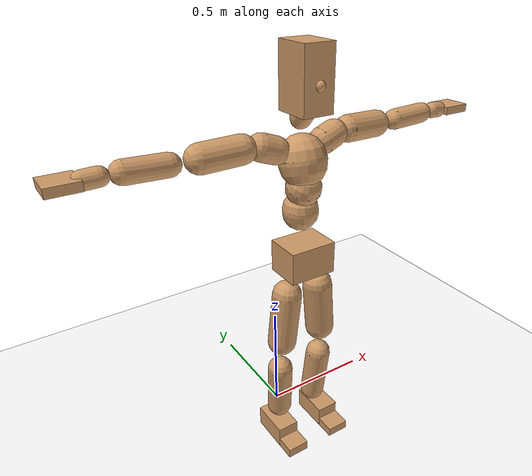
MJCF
<mujoco model="humanoid">
  <option integrator="implicitfast" />

  <visual>
    <global offwidth="1280" offheight="960" />
    <headlight active="1" ambient="0.34 0.34 0.34" diffuse="0.5 0.5 0.5" />
  </visual>

  <default>
    <joint damping="2" stiffness="2" armature="0.01" limited="true" solimplimit="0 .99 .01" />
    <geom condim="1" friction="0.7 0.005 0.0001" solimp=".99 .99 .003" solref="0.015 1" margin="0.001" rgba="0.8 0.6 .4 1" />
    <default class="smplcontact">
      <geom condim="3" friction="1. 0.005 0.0001" solref="0.015 1" solimp="0.98 0.98 0.001" priority="1" />
    </default>
    <default class="stiff_medium">
      <joint stiffness="10" />
    </default>
    <default class="stiff_medium_higher">
      <joint stiffness="50" />
    </default>
    <default class="stiff_high">
      <joint stiffness="100" />
    </default>
  </default>

  <asset>
    <texture type="skybox" builtin="gradient" rgb1="0.99 0.99 0.99" rgb2="0.608 0.828 0.892" width="100" />
    <texture builtin="flat" height="1278" mark="cross" markrgb="1 1 1" name="texgeom" random="0.01" rgb1="0.8 0.6 0.4" rgb2="0.8 0.6 0.4" type="cube" width="127" />
    <texture name="texplane" type="2d" builtin="checker" markrgb="1 1 1" rgb1="0.756 0.772 0.76" rgb2="0.6 0.6 0.6" width="100" height="100" />
    <material name="MatPlane" reflectance="0.5" texture="texplane" texrepeat="1 1" texuniform="true" />
    <material name="geom" texture="texgeom" texuniform="true" />
  </asset>

  <worldbody>
    <light name="tracking_light" pos="0 0 7" dir="0 0 -1" directional="true" cutoff="100" exponent="1" diffuse="1 1 1" specular="0.1 0.1 0.1" mode="trackcom" />
    <camera name="back" pos="0 3 2.4" xyaxes="-1 0 0 0 -1 2" mode="trackcom" />
    <camera name="side" pos="-3 0 2.4" xyaxes="0 -1 0 1 0 2" mode="trackcom" />
    <camera name="front_side" pos="-2.8 -2.8 0.8" xyaxes="0.5 -0.5 0 0.1 0.1 1" mode="trackcom" />
    <geom condim="3" name="floor" pos="0 0 0" rgba="1 1 1 1" size="100 100 .2" type="plane" material="MatPlane" />
    <body name="Pelvis" pos="-0.0018 -0.2233 0.9367" euler="90 0 0">
      <site name="Pelvis" size="0.01" />
      <freejoint name="Pelvis" />
      <geom type="box" pos="-0.0000 -0.0121 -0.0055" size="0.097279 0.065702 0.07553" quat="1.0000 0.0000 0.0000 0.0000" density="3165.830099" name="Pelvis" />
      <body name="L_Hip" pos="0.0695 -0.0914 -0.0068">
        <joint name="L_Hip_x" type="hinge" pos="0 0 0" axis="1 0 0" stiffness="10.0" range="-160.0 22.92" class="stiff_medium" damping="14.999999999999998" armature="0.009999999999999998"/>
        <joint name="L_Hip_y" type="hinge" pos="0 0 0" axis="0 1 0" stiffness="10.0" range="-70.0 70.0" class="stiff_medium" damping="10.000000000000004" armature="0.010000000000000009"/>
        <joint name="L_Hip_z" type="hinge" pos="0 0 0" axis="0 0 1" stiffness="10.0" range="-28.65 90.0" class="stiff_medium" damping="9.999999999999998" armature="0.009999999999999998"/>
        <geom type="capsule" density="2040.816327" fromto="0.0069 -0.075 -0.0009 0.0274 -0.3002 -0.0036" size="0.0615" name="L_Hip" />
        <body name="L_Knee" pos="0.0343 -0.3752 -0.0045">
          <joint name="L_Knee_x" type="hinge" pos="0 0 0" axis="1 0 0" range="-5.16 171.89" damping="7.999999999999999" armature="0.009999999999999998" stiffness="2.0"/>
          <joint name="L_Knee_y" type="hinge" pos="0 0 0" axis="0 1 0" range="-4.58 6.88" damping="8.0" armature="0.010000000000000002" stiffness="2.0"/>
          <joint name="L_Knee_z" type="hinge" pos="0 0 0" axis="0 0 1" range="-6.88 4.58" damping="7.999999999999999" armature="0.009999999999999998" stiffness="2.0"/>
          <geom type="capsule" density="1234.567901" fromto="-0.0027 -0.0796 -0.0087 -0.0109 -0.3184 -0.035" size="0.0541" name="L_Knee" />
          <body name="L_Ankle" pos="-0.0136 -0.398 -0.0437">
            <joint name="L_Ankle_x" type="hinge" pos="0 0 0" axis="1 0 0" range="-45.84 45.84" class="stiff_medium" damping="6.000000000000078" armature="0.010000000000000262" stiffness="10.0"/>
            <joint name="L_Ankle_y" type="hinge" pos="0 0 0" axis="0 1 0" range="-74.48 22.92" class="stiff_medium" damping="3.0" armature="0.010000000000000002" stiffness="10.0"/>
            <joint name="L_Ankle_z" type="hinge" pos="0 0 0" axis="0 0 1" range="-4.58 4.58" class="stiff_medium" damping="6.000000000000083" armature="0.010000000000000276" stiffness="10.0"/>
            <geom type="box" pos="0.0233 -0.0239 0.0242" size="0.0483 0.0464 0.085" quat="1.0000 0.0000 0.0000 0.0000" density="449.071558" name="L_Ankle" class="smplcontact" />
            <body name="L_Toe" pos="0.0264 -0.0558 0.1193">
              <joint name="L_Toe_x" type="hinge" pos="0 0 0" axis="1 0 0" range="-91.67 22.92" armature="0.009999999999999227" damping="1.9999999999999225" stiffness="2.0"/>
              <joint name="L_Toe_y" type="hinge" pos="0 0 0" axis="0 1 0" range="-4.58 4.58" armature="0.009999999999999976" damping="1.9999999999999976" stiffness="2.0"/>
              <joint name="L_Toe_z" type="hinge" pos="0 0 0" axis="0 0 1" range="-4.58 4.58" armature="0.009999999999998817" damping="1.9999999999998817" stiffness="2.0"/>
              <geom type="box" pos="-0.003 0.0055 0.0248" size="0.0478 0.02 0.0496" quat="1.0000 0.0000 0.0000 0.0000" density="423.206892" name="L_Toe" class="smplcontact" />
            </body>
          </body>
        </body>
      </body>
      <body name="R_Hip" pos="-0.0677 -0.0905 -0.0043">
        <joint name="R_Hip_x" type="hinge" pos="0 0 0" axis="1 0 0" stiffness="10.0" range="-160.0 22.92" class="stiff_medium" damping="14.999999999999998" armature="0.009999999999999998"/>
        <joint name="R_Hip_y" type="hinge" pos="0 0 0" axis="0 1 0" stiffness="10.0" range="-70.0 70.0" class="stiff_medium" damping="10.000000000000004" armature="0.010000000000000009"/>
        <joint name="R_Hip_z" type="hinge" pos="0 0 0" axis="0 0 1" stiffness="10.0" range="-90.0 28.65" class="stiff_medium" damping="9.999999999999998" armature="0.009999999999999998"/>
        <geom type="capsule" density="2040.816327" fromto="-0.0077 -0.0765 -0.0018 -0.0306 -0.3061 -0.0071" size="0.0606" name="R_Hip" />
        <body name="R_Knee" pos="-0.0383 -0.3826 -0.0089">
          <joint name="R_Knee_x" type="hinge" pos="0 0 0" axis="1 0 0" range="-5.16 171.89" damping="7.999999999999999" armature="0.009999999999999998" stiffness="2.0"/>
          <joint name="R_Knee_y" type="hinge" pos="0 0 0" axis="0 1 0" range="-6.88 4.58" damping="8.0" armature="0.010000000000000002" stiffness="2.0"/>
          <joint name="R_Knee_z" type="hinge" pos="0 0 0" axis="0 0 1" range="-4.58 6.88" damping="7.999999999999999" armature="0.009999999999999998" stiffness="2.0"/>
          <geom type="capsule" density="1234.567901" fromto="0.0032 -0.0797 -0.0085 0.0126 -0.3187 -0.0338" size="0.0541" name="R_Knee" />
          <body name="R_Ankle" pos="0.0158 -0.3984 -0.0423">
            <joint name="R_Ankle_x" type="hinge" pos="0 0 0" axis="1 0 0" range="-45.84 45.84" class="stiff_medium" damping="6.000000000000078" armature="0.010000000000000262" stiffness="10.0"/>
            <joint name="R_Ankle_y" type="hinge" pos="0 0 0" axis="0 1 0" range="-22.92 74.48" class="stiff_medium" damping="3.0" armature="0.010000000000000002" stiffness="10.0"/>
            <joint name="R_Ankle_z" type="hinge" pos="0 0 0" axis="0 0 1" range="-4.58 4.58" class="stiff_medium" damping="6.000000000000083" armature="0.010000000000000276" stiffness="10.0"/>
            <geom type="box" pos="-0.0212 -0.0174 0.0256" size="0.0483 0.0478 0.0865" quat="1.0000 0.0000 0.0000 0.0000" density="434.700981" name="R_Ankle" class="smplcontact" />
            <body name="R_Toe" pos="-0.0254 -0.0481 0.1233">
              <joint name="R_Toe_x" type="hinge" pos="0 0 0" axis="1 0 0" range="-91.67 22.92" armature="0.009999999999999227" damping="1.9999999999999225" stiffness="2.0"/>
              <joint name="R_Toe_y" type="hinge" pos="0 0 0" axis="0 1 0" range="-4.58 4.58" armature="0.009999999999999976" damping="1.9999999999999976" stiffness="2.0"/>
              <joint name="R_Toe_z" type="hinge" pos="0 0 0" axis="0 0 1" range="-4.58 4.58" armature="0.009999999999998817" damping="1.9999999999998817" stiffness="2.0"/>
              <geom type="box" pos="0.0042 0.0045 0.0227" size="0.0479 0.0216 0.0493" quat="1.0000 0.0000 0.0000 0.0000" density="407.384095" name="R_Toe" class="smplcontact" />
            </body>
          </body>
        </body>
      </body>
      <body name="Torso" pos="-0.0025 0.109 -0.0267">
        <joint name="Torso_x" type="hinge" pos="0 0 0" axis="1 0 0" range="-25.78 57.3" class="stiff_medium" damping="13.755115043695481" armature="0.009288770986477736" stiffness="9.052899111111113"/>
        <joint name="Torso_y" type="hinge" pos="0 0 0" axis="0 1 0" range="-57.3 57.3" class="stiff_high" damping="18.84625245289182" armature="0.009867900344298207" stiffness="89.98399333333336"/>
        <joint name="Torso_z" type="hinge" pos="0 0 0" axis="0 0 1" range="-34.38 34.38" class="stiff_high" damping="18.340630066840674" armature="0.009518363634420931" stiffness="88.34993181818182"/>
        <geom type="capsule" density="2040.816327" fromto="0.0025 0.0608 0.0005 0.003 0.0743 0.0006" size="0.069979" name="Torso" />
        <body name="Spine" pos="0.0055 0.1352 0.0011">
          <joint name="Spine_x" type="hinge" pos="0 0 0" axis="1 0 0" stiffness="9.215996444444444" range="-25.78 57.3" class="stiff_medium" damping="14.042368845288518" armature="0.009509461750714873"/>
          <joint name="Spine_y" type="hinge" pos="0 0 0" axis="0 1 0" stiffness="9.201302444444444" range="-57.3 57.3" class="stiff_high" damping="7.632077169407893" armature="0.009891364950690774"/>
          <joint name="Spine_z" type="hinge" pos="0 0 0" axis="0 0 1" stiffness="18.56600444444444" range="-34.38 34.38" class="stiff_high" damping="11.427369983522102" armature="0.009768809284004231"/>
          <geom type="capsule" density="2040.816327" fromto="0.0007 0.0238 0.0114 0.0008 0.0291 0.014" size="0.068705" name="Spine" />
          <body name="Chest" pos="0.0015 0.0529 0.0254">
            <joint name="Chest_x" type="hinge" pos="0 0 0" axis="1 0 0" stiffness="9.426370888888888" range="-25.78 57.3" class="stiff_medium" damping="14.277047265086503" armature="0.00961058342540234"/>
            <joint name="Chest_y" type="hinge" pos="0 0 0" axis="0 1 0" stiffness="9.697409555555558" range="-57.3 57.3" class="stiff_high" damping="7.8417588035285455" armature="0.009908119789044682"/>
            <joint name="Chest_z" type="hinge" pos="0 0 0" axis="0 0 1" stiffness="18.758218666666664" range="-34.38 34.38" class="stiff_high" damping="11.536535064630984" armature="0.009854320662681338"/>
            <geom type="capsule" density="2040.816327" fromto="-0.0009 0.0682 -0.0173 -0.001 0.0833 -0.0212" size="0.091182" name="Chest" />
            <body name="Neck" pos="-0.0028 0.2139 -0.0429">
              <joint name="Neck_x" type="hinge" pos="0 0 0" axis="1 0 0" range="-28.65 57.3" class="stiff_medium_higher" damping="9.898506386042525" armature="0.009961362504809375" stiffness="49.180234444444444"/>
              <joint name="Neck_y" type="hinge" pos="0 0 0" axis="0 1 0" range="-40.11 40.11" class="stiff_medium_higher" damping="9.860787576259643" armature="0.00985138945156737" stiffness="49.35097333333333"/>
              <joint name="Neck_z" type="hinge" pos="0 0 0" axis="0 0 1" range="-40.11 40.11" class="stiff_medium_higher" damping="9.952126776728033" armature="0.009968457640890575" stiffness="49.67911333333333"/>
              <geom type="capsule" density="1000" fromto="0.001 0.013 0.0103 0.0041 0.052 0.0411" size="0.039676" name="Neck" />
              <body name="Head" pos="0.0052 0.065 0.0513">
                <joint name="Head_x" type="hinge" pos="0 0 0" axis="1 0 0" range="-28.65 57.3" class="stiff_medium_higher" damping="2.0000000000000027" armature="0.010000000000000026" stiffness="50.0"/>
                <joint name="Head_y" type="hinge" pos="0 0 0" axis="0 1 0" range="-40.11 40.11" class="stiff_medium_higher" damping="1.9999999999999998" armature="0.009999999999999998" stiffness="50.0"/>
                <joint name="Head_z" type="hinge" pos="0 0 0" axis="0 0 1" range="-40.11 40.11" class="stiff_medium_higher" damping="2.000000000000003" armature="0.010000000000000031" stiffness="50.0"/>
                <geom type="box" pos="-0.0042 0.0876 -0.0116" size="0.0606 0.1154 0.076" quat="1.0000 0.0000 0.0000 0.0000" density="1018.069894" name="Head" />
                <geom type="capsule" name="nose" size="0.02 0.01" pos="0 0.07 0.05" quat="1 0 0 0" mass="0" contype="0" conaffinity="0" />
              </body>
            </body>
            <body name="L_Thorax" pos="0.0788 0.1217 -0.0341">
              <joint name="L_Thorax_x" type="hinge" pos="0 0 0" axis="1 0 0" range="-10.89 4.58" class="stiff_medium_higher" damping="20.000000000000036" armature="0.010000000000000035" stiffness="50.0"/>
              <joint name="L_Thorax_y" type="hinge" pos="0 0 0" axis="0 1 0" range="-28.65 17.19" class="stiff_medium_higher" damping="20.0" armature="0.010000000000000002" stiffness="50.0"/>
              <joint name="L_Thorax_z" type="hinge" pos="0 0 0" axis="0 0 1" range="-31.51 40.11" class="stiff_medium_higher" damping="20.0" armature="0.01" stiffness="50.0"/>
              <geom type="capsule" density="1000" fromto="0.0182 0.0061 -0.0018 0.0728 0.0244 -0.0071" size="0.0521" name="L_Thorax" />
              <body name="L_Shoulder" pos="0.091 0.0305 -0.0089">
                <joint name="L_Shoulder_x" type="hinge" pos="0 0 0" axis="1 0 0" range="-97.4 97.4" class="stiff_medium" damping="6.0000000000000036" armature="0.010000000000000014" stiffness="10.0"/>
                <joint name="L_Shoulder_y" type="hinge" pos="0 0 0" axis="0 1 0" range="-108.86 80.21" class="stiff_medium" damping="6.0" armature="0.01" stiffness="10.0"/>
                <joint name="L_Shoulder_z" type="hinge" pos="0 0 0" axis="0 0 1" range="-97.4 85.94" class="stiff_medium" damping="6.0" armature="0.010000000000000002" stiffness="10.0"/>
                <geom type="capsule" density="1000" fromto="0.0519 -0.0026 -0.0055 0.2077 -0.0102 -0.022" size="0.0517" name="L_Shoulder" />
                <body name="L_Elbow" pos="0.2596 -0.0128 -0.0275">
                  <joint name="L_Elbow_x" type="hinge" pos="0 0 0" axis="1 0 0" range="-17.19 4.58" damping="4.999999999999999" armature="0.009999999999999998" stiffness="2.0"/>
                  <joint name="L_Elbow_y" type="hinge" pos="0 0 0" axis="0 1 0" range="-180.0 17.19" damping="5.000000000000007" armature="0.010000000000000026" stiffness="2.0"/>
                  <joint name="L_Elbow_z" type="hinge" pos="0 0 0" axis="0 0 1" range="-100.84 4.58" damping="5.000000000000002" armature="0.010000000000000009" stiffness="2.0"/>
                  <geom type="capsule" density="1000" fromto="0.0498 0.0018 -0.0002 0.1994 0.0072 -0.0009" size="0.0405" name="L_Elbow" />
                  <body name="L_Wrist" pos="0.2492 0.009 -0.0012">
                    <joint name="L_Wrist_x" type="hinge" pos="0 0 0" axis="1 0 0" range="-180.0 22.92" armature="0.009999999999999872" damping="1.9999999999999871" stiffness="2.0"/>
                    <joint name="L_Wrist_y" type="hinge" pos="0 0 0" axis="0 1 0" range="-17.19 17.19" armature="0.010000000000000023" damping="2.000000000000002" stiffness="2.0"/>
                    <joint name="L_Wrist_z" type="hinge" pos="0 0 0" axis="0 0 1" range="-22.92 22.92" armature="0.009999999999999943" damping="1.9999999999999942" stiffness="2.0"/>
                    <geom type="capsule" density="1000" fromto="0.0168 -0.0016 -0.003 0.0672 -0.0065 -0.012" size="0.0318" name="L_Wrist" class="smplcontact" />
                    <body name="L_Hand" pos="0.084 -0.0082 -0.0149">
                      <joint name="L_Hand_x" type="hinge" pos="0 0 0" axis="1 0 0" range="-17.19 17.19" armature="0.009999999999999953" damping="1.9999999999999953" stiffness="2.0"/>
                      <joint name="L_Hand_y" type="hinge" pos="0 0 0" axis="0 1 0" range="-51.57 51.57" armature="0.010000000000000146" damping="2.0000000000000147" stiffness="2.0"/>
                      <joint name="L_Hand_z" type="hinge" pos="0 0 0" axis="0 0 1" range="-91.67 91.67" armature="0.009999999999999993" damping="1.9999999999999993" stiffness="2.0"/>
                      <geom type="box" pos="0.0493 0.001 -0.0058" size="0.0585 0.0158 0.0538" quat="1.0000 0.0000 0.0000 0.0000" density="400.552564" name="L_Hand" class="smplcontact" />
                    </body>
                  </body>
                </body>
              </body>
            </body>
            <body name="R_Thorax" pos="-0.0818 0.1188 -0.0386">
              <joint name="R_Thorax_x" type="hinge" pos="0 0 0" axis="1 0 0" range="-10.89 4.58" class="stiff_medium_higher" damping="20.000000000000036" armature="0.010000000000000035" stiffness="50.0"/>
              <joint name="R_Thorax_y" type="hinge" pos="0 0 0" axis="0 1 0" range="-17.19 28.65" class="stiff_medium_higher" damping="20.0" armature="0.010000000000000002" stiffness="50.0"/>
              <joint name="R_Thorax_z" type="hinge" pos="0 0 0" axis="0 0 1" range="-40.11 31.51" class="stiff_medium_higher" damping="20.0" armature="0.01" stiffness="50.0"/>
              <geom type="capsule" density="1000" fromto="-0.0192 0.0065 -0.0018 -0.0768 0.026 -0.0073" size="0.0511" name="R_Thorax" />
              <body name="R_Shoulder" pos="-0.096 0.0326 -0.0091">
                <joint name="R_Shoulder_x" type="hinge" pos="0 0 0" axis="1 0 0" range="-97.4 97.4" class="stiff_medium" damping="6.0000000000000036" armature="0.010000000000000014" stiffness="10.0"/>
                <joint name="R_Shoulder_y" type="hinge" pos="0 0 0" axis="0 1 0" range="-80.21 108.86" class="stiff_medium" damping="6.0" armature="0.01" stiffness="10.0"/>
                <joint name="R_Shoulder_z" type="hinge" pos="0 0 0" axis="0 0 1" range="-85.94 97.4" class="stiff_medium" damping="6.0" armature="0.010000000000000002" stiffness="10.0"/>
                <geom type="capsule" density="1000" fromto="-0.0507 -0.0027 -0.0043 -0.203 -0.0107 -0.0171" size="0.0531" name="R_Shoulder" />
                <body name="R_Elbow" pos="-0.2537 -0.0133 -0.0214">
                  <joint name="R_Elbow_x" type="hinge" pos="0 0 0" axis="1 0 0" range="-17.19 4.58" damping="4.999999999999999" armature="0.009999999999999998" stiffness="2.0"/>
                  <joint name="R_Elbow_y" type="hinge" pos="0 0 0" axis="0 1 0" range="-17.19 180.0" damping="5.000000000000007" armature="0.010000000000000026" stiffness="2.0"/>
                  <joint name="R_Elbow_z" type="hinge" pos="0 0 0" axis="0 0 1" range="-4.58 100.84" damping="5.000000000000002" armature="0.010000000000000009" stiffness="2.0"/>
                  <geom type="capsule" density="1000" fromto="-0.0511 0.0016 -0.0011 -0.2042 0.0062 -0.0044" size="0.0408" name="R_Elbow" />
                  <body name="R_Wrist" pos="-0.2553 0.0078 -0.0056">
                    <joint name="R_Wrist_x" type="hinge" pos="0 0 0" axis="1 0 0" range="-180.0 22.92" armature="0.009999999999999872" damping="1.9999999999999871" stiffness="2.0"/>
                    <joint name="R_Wrist_y" type="hinge" pos="0 0 0" axis="0 1 0" range="-17.19 17.19" armature="0.010000000000000023" damping="2.000000000000002" stiffness="2.0"/>
                    <joint name="R_Wrist_z" type="hinge" pos="0 0 0" axis="0 0 1" range="-22.92 22.92" armature="0.009999999999999943" damping="1.9999999999999942" stiffness="2.0"/>
                    <geom type="capsule" density="1000" fromto="-0.0169 -0.0012 -0.0021 -0.0677 -0.0049 -0.0083" size="0.0326" name="R_Wrist" class="smplcontact" />
                    <body name="R_Hand" pos="-0.0846 -0.0061 -0.0103">
                      <joint name="R_Hand_x" type="hinge" pos="0 0 0" axis="1 0 0" range="-17.19 17.19" armature="0.009999999999999953" damping="1.9999999999999953" stiffness="2.0"/>
                      <joint name="R_Hand_y" type="hinge" pos="0 0 0" axis="0 1 0" range="-51.57 51.57" armature="0.010000000000000146" damping="2.0000000000000147" stiffness="2.0"/>
                      <joint name="R_Hand_z" type="hinge" pos="0 0 0" axis="0 0 1" range="-91.67 91.67" armature="0.009999999999999993" damping="1.9999999999999993" stiffness="2.0"/>
                      <geom type="box" pos="-0.0462 -0.0009 -0.0079" size="0.0569 0.0164 0.0546" quat="1.0000 0.0000 0.0000 0.0000" density="403.679611" name="R_Hand" class="smplcontact" />
                    </body>
                  </body>
                </body>
              </body>
            </body>
          </body>
        </body>
      </body>
    </body>
  </worldbody>
  <actuator>
    <general name="L_Hip_x" joint="L_Hip_x" biastype="affine" gainprm="287.33006409732246" biasprm="-215.3247604770444 -180.0 -1.9999999999999998" ctrllimited="true" ctrlrange="-1 1" forcerange="-360.0 360.0" />
    <general name="L_Hip_y" joint="L_Hip_y" biastype="affine" gainprm="219.9114857512855" biasprm="0.0 -180.0 -2.000000000000001" ctrllimited="true" ctrlrange="-1 1" forcerange="-360.0 360.0" />
    <general name="L_Hip_z" joint="L_Hip_z" biastype="affine" gainprm="186.3749841742145" biasprm="96.3683546488669 -180.0 -1.9999999999999998" ctrllimited="true" ctrlrange="-1 1" forcerange="-360.0 360.0" />
    <general name="L_Knee_x" joint="L_Knee_x" biastype="affine" gainprm="278.10948965903646" biasprm="261.8988715665131 -180.0 -1.9999999999999998" ctrllimited="true" ctrlrange="-1 1" forcerange="-360.0 360.0" />
    <general name="L_Knee_y" joint="L_Knee_y" biastype="affine" gainprm="18.001325905069514" biasprm="3.612831551628262 -180.0 -2.0" ctrllimited="true" ctrlrange="-1 1" forcerange="-360.0 360.0" />
    <general name="L_Knee_z" joint="L_Knee_z" biastype="affine" gainprm="18.001325905069514" biasprm="-3.612831551628262 -180.0 -1.9999999999999998" ctrllimited="true" ctrlrange="-1 1" forcerange="-360.0 360.0" />
    <general name="L_Ankle_x" joint="L_Ankle_x" biastype="affine" gainprm="72.00530362027807" biasprm="0.0 -90.0 -2.000000000000026" ctrllimited="true" ctrlrange="-1 1" forcerange="-180.0 180.0" />
    <general name="L_Ankle_y" joint="L_Ankle_y" biastype="affine" gainprm="76.49778111491148" biasprm="-40.49512930477244 -90.0 -2.0" ctrllimited="true" ctrlrange="-1 1" forcerange="-180.0 180.0" />
    <general name="L_Ankle_z" joint="L_Ankle_z" biastype="affine" gainprm="7.1942471767206255" biasprm="0.0 -90.0 -2.0000000000000275" ctrllimited="true" ctrlrange="-1 1" forcerange="-180.0 180.0" />
    <general name="L_Toe_x" joint="L_Toe_x" biastype="affine" gainprm="71.99902043497087" biasprm="-43.19689898685965 -72.0 -0.7999999999999691" ctrllimited="true" ctrlrange="-1 1" forcerange="-144.0 144.0" />
    <general name="L_Toe_y" joint="L_Toe_y" biastype="affine" gainprm="5.755397741376501" biasprm="0.0 -72.0 -0.799999999999999" ctrllimited="true" ctrlrange="-1 1" forcerange="-144.0 144.0" />
    <general name="L_Toe_z" joint="L_Toe_z" biastype="affine" gainprm="5.755397741376501" biasprm="0.0 -72.0 -0.7999999999999527" ctrllimited="true" ctrlrange="-1 1" forcerange="-144.0 144.0" />
    <general name="R_Hip_x" joint="R_Hip_x" biastype="affine" gainprm="287.33006409732246" biasprm="-215.3247604770444 -180.0 -1.9999999999999998" ctrllimited="true" ctrlrange="-1 1" forcerange="-360.0 360.0" />
    <general name="R_Hip_y" joint="R_Hip_y" biastype="affine" gainprm="219.9114857512855" biasprm="0.0 -180.0 -2.000000000000001" ctrllimited="true" ctrlrange="-1 1" forcerange="-360.0 360.0" />
    <general name="R_Hip_z" joint="R_Hip_z" biastype="affine" gainprm="186.3749841742145" biasprm="-96.3683546488669 -180.0 -1.9999999999999998" ctrllimited="true" ctrlrange="-1 1" forcerange="-360.0 360.0" />
    <general name="R_Knee_x" joint="R_Knee_x" biastype="affine" gainprm="278.10948965903646" biasprm="261.8988715665131 -180.0 -1.9999999999999998" ctrllimited="true" ctrlrange="-1 1" forcerange="-360.0 360.0" />
    <general name="R_Knee_y" joint="R_Knee_y" biastype="affine" gainprm="18.001325905069514" biasprm="-3.612831551628262 -180.0 -2.0" ctrllimited="true" ctrlrange="-1 1" forcerange="-360.0 360.0" />
    <general name="R_Knee_z" joint="R_Knee_z" biastype="affine" gainprm="18.001325905069514" biasprm="3.612831551628262 -180.0 -1.9999999999999998" ctrllimited="true" ctrlrange="-1 1" forcerange="-360.0 360.0" />
    <general name="R_Ankle_x" joint="R_Ankle_x" biastype="affine" gainprm="72.00530362027807" biasprm="0.0 -90.0 -2.000000000000026" ctrllimited="true" ctrlrange="-1 1" forcerange="-180.0 180.0" />
    <general name="R_Ankle_y" joint="R_Ankle_y" biastype="affine" gainprm="76.49778111491148" biasprm="40.49512930477244 -90.0 -2.0" ctrllimited="true" ctrlrange="-1 1" forcerange="-180.0 180.0" />
    <general name="R_Ankle_z" joint="R_Ankle_z" biastype="affine" gainprm="7.1942471767206255" biasprm="0.0 -90.0 -2.0000000000000275" ctrllimited="true" ctrlrange="-1 1" forcerange="-180.0 180.0" />
    <general name="R_Toe_x" joint="R_Toe_x" biastype="affine" gainprm="71.99902043497087" biasprm="-43.19689898685965 -72.0 -0.7999999999999691" ctrllimited="true" ctrlrange="-1 1" forcerange="-144.0 144.0" />
    <general name="R_Toe_y" joint="R_Toe_y" biastype="affine" gainprm="5.755397741376501" biasprm="0.0 -72.0 -0.799999999999999" ctrllimited="true" ctrlrange="-1 1" forcerange="-144.0 144.0" />
    <general name="R_Toe_z" joint="R_Toe_z" biastype="affine" gainprm="5.755397741376501" biasprm="0.0 -72.0 -0.7999999999999527" ctrllimited="true" ctrlrange="-1 1" forcerange="-144.0 144.0" />
    <general name="Torso_x" joint="Torso_x" biastype="affine" gainprm="157.52256753488402" biasprm="59.76301551154963 -217.2695786666667 -3.668030678318795" ctrllimited="true" ctrlrange="-1 1" forcerange="-325.90436800000003 325.90436800000003" />
    <general name="Torso_y" joint="Torso_y" biastype="affine" gainprm="215.97749203105815" biasprm="0.0 -215.96158400000004 -3.7692504905783646" ctrllimited="true" ctrlrange="-1 1" forcerange="-323.9423760000001 323.9423760000001" />
    <general name="Torso_z" joint="Torso_z" biastype="affine" gainprm="127.23327330798095" biasprm="0.0 -212.03983636363637 -3.668126013368135" ctrllimited="true" ctrlrange="-1 1" forcerange="-318.05975454545455 318.05975454545455" />
    <general name="Spine_x" joint="Spine_x" biastype="affine" gainprm="160.360499382951" biasprm="60.8397079989241 -221.18391466666665 -3.744631692076938" ctrllimited="true" ctrlrange="-1 1" forcerange="-331.775872 331.775872" />
    <general name="Spine_y" joint="Spine_y" biastype="affine" gainprm="220.84752540474295" biasprm="0.0 -220.83125866666668 -3.8160385847039464" ctrllimited="true" ctrlrange="-1 1" forcerange="-331.246888 331.246888" />
    <general name="Spine_z" joint="Spine_z" biastype="affine" gainprm="133.6850787037654" biasprm="0.0 -222.79205333333329 -3.8091233278407004" ctrllimited="true" ctrlrange="-1 1" forcerange="-334.18807999999996 334.18807999999996" />
    <general name="Chest_x" joint="Chest_x" biastype="affine" gainprm="164.02106405133887" biasprm="62.228501912592684 -226.2329013333333 -3.8072126040230674" ctrllimited="true" ctrlrange="-1 1" forcerange="-339.34935199999995 339.34935199999995" />
    <general name="Chest_y" joint="Chest_y" biastype="affine" gainprm="232.75497312598787" biasprm="0.0 -232.73782933333337 -3.9208794017642727" ctrllimited="true" ctrlrange="-1 1" forcerange="-349.10674400000005 349.10674400000005" />
    <general name="Chest_z" joint="Chest_z" biastype="affine" gainprm="135.06912304689007" biasprm="0.0 -225.09862399999997 -3.845511688210328" ctrllimited="true" ctrlrange="-1 1" forcerange="-337.64793599999996 337.64793599999996" />
    <general name="Neck_x" joint="Neck_x" biastype="affine" gainprm="26.55928284966509" biasprm="8.853094283221697 -35.4097688 -0.7918805108834022" ctrllimited="true" ctrlrange="-1 1" forcerange="-70.8195376 70.8195376" />
    <general name="Neck_y" joint="Neck_y" biastype="affine" gainprm="24.874722731760386" biasprm="0.0 -35.5327008 -0.7888630061007714" ctrllimited="true" ctrlrange="-1 1" forcerange="-71.0654016 71.0654016" />
    <general name="Neck_z" joint="Neck_z" biastype="affine" gainprm="25.040117474070094" biasprm="0.0 -35.768961600000004 -0.7961701421382427" ctrllimited="true" ctrlrange="-1 1" forcerange="-71.53792320000001 71.53792320000001" />
    <general name="Head_x" joint="Head_x" biastype="affine" gainprm="18.001325905069514" biasprm="6.000441968356505 -24.0 -0.8000000000000012" ctrllimited="true" ctrlrange="-1 1" forcerange="-48.0 48.0" />
    <general name="Head_y" joint="Head_y" biastype="affine" gainprm="16.801237511398213" biasprm="0.0 -24.0 -0.7999999999999999" ctrllimited="true" ctrlrange="-1 1" forcerange="-48.0 48.0" />
    <general name="Head_z" joint="Head_z" biastype="affine" gainprm="16.801237511398213" biasprm="0.0 -24.0 -0.8000000000000013" ctrllimited="true" ctrlrange="-1 1" forcerange="-48.0 48.0" />
    <general name="L_Thorax_x" joint="L_Thorax_x" biastype="affine" gainprm="16.200146117011364" biasprm="-6.6078165480505335 -120.0 -1.600000000000003" ctrllimited="true" ctrlrange="-1 1" forcerange="-240.0 240.0" />
    <general name="L_Thorax_y" joint="L_Thorax_y" biastype="affine" gainprm="48.00353574685204" biasprm="-12.00088393671301 -120.0 -1.6" ctrllimited="true" ctrlrange="-1 1" forcerange="-240.0 240.0" />
    <general name="L_Thorax_z" joint="L_Thorax_z" biastype="affine" gainprm="75.00028861670033" biasprm="9.00589894029074 -120.0 -1.6" ctrllimited="true" ctrlrange="-1 1" forcerange="-240.0 240.0" />
    <general name="L_Shoulder_x" joint="L_Shoulder_x" biastype="affine" gainprm="81.5976331892389" biasprm="0.0 -48.0 -1.6000000000000012" ctrllimited="true" ctrlrange="-1 1" forcerange="-96.0 96.0" />
    <general name="L_Shoulder_y" joint="L_Shoulder_y" biastype="affine" gainprm="79.19745640189629" biasprm="-12.00088393671301 -48.0 -1.6" ctrllimited="true" ctrlrange="-1 1" forcerange="-96.0 96.0" />
    <general name="L_Shoulder_z" joint="L_Shoulder_z" biastype="affine" gainprm="76.79727961455369" biasprm="-4.800353574685214 -48.0 -1.6" ctrllimited="true" ctrlrange="-1 1" forcerange="-96.0 96.0" />
    <general name="L_Elbow_x" joint="L_Elbow_x" biastype="affine" gainprm="13.67849441372996" biasprm="-7.923096672353461 -72.0 -0.7999999999999999" ctrllimited="true" ctrlrange="-1 1" forcerange="-144.0 144.0" />
    <general name="L_Elbow_y" joint="L_Elbow_y" biastype="affine" gainprm="123.89813107227425" biasprm="-102.29653998619085 -72.0 -0.8000000000000012" ctrllimited="true" ctrlrange="-1 1" forcerange="-144.0 144.0" />
    <general name="L_Elbow_z" joint="L_Elbow_z" biastype="affine" gainprm="66.23733950828719" biasprm="-60.4819417669107 -72.0 -0.8000000000000004" ctrllimited="true" ctrlrange="-1 1" forcerange="-144.0 144.0" />
    <general name="L_Wrist_x" joint="L_Wrist_x" biastype="affine" gainprm="21.24973270888136" biasprm="-16.449379134196157 -12.0 -0.7999999999999949" ctrllimited="true" ctrlrange="-1 1" forcerange="-24.0 24.0" />
    <general name="L_Wrist_y" joint="L_Wrist_y" biastype="affine" gainprm="3.6002651810139037" biasprm="0.0 -12.0 -0.8000000000000009" ctrllimited="true" ctrlrange="-1 1" forcerange="-24.0 24.0" />
    <general name="L_Wrist_z" joint="L_Wrist_z" biastype="affine" gainprm="4.800353574685205" biasprm="0.0 -12.0 -0.7999999999999977" ctrllimited="true" ctrlrange="-1 1" forcerange="-24.0 24.0" />
    <general name="L_Hand_x" joint="L_Hand_x" biastype="affine" gainprm="3.6002651810139037" biasprm="0.0 -12.0 -0.7999999999999982" ctrllimited="true" ctrlrange="-1 1" forcerange="-24.0 24.0" />
    <general name="L_Hand_y" joint="L_Hand_y" biastype="affine" gainprm="10.800795543041708" biasprm="0.0 -12.0 -0.8000000000000059" ctrllimited="true" ctrlrange="-1 1" forcerange="-24.0 24.0" />
    <general name="L_Hand_z" joint="L_Hand_z" biastype="affine" gainprm="19.199319903638422" biasprm="0.0 -12.0 -0.7999999999999998" ctrllimited="true" ctrlrange="-1 1" forcerange="-24.0 24.0" />
    <general name="R_Thorax_x" joint="R_Thorax_x" biastype="affine" gainprm="16.200146117011364" biasprm="-6.6078165480505335 -120.0 -1.600000000000003" ctrllimited="true" ctrlrange="-1 1" forcerange="-240.0 240.0" />
    <general name="R_Thorax_y" joint="R_Thorax_y" biastype="affine" gainprm="48.00353574685204" biasprm="12.000883936713002 -120.0 -1.6" ctrllimited="true" ctrlrange="-1 1" forcerange="-240.0 240.0" />
    <general name="R_Thorax_z" joint="R_Thorax_z" biastype="affine" gainprm="75.00028861670033" biasprm="-9.00589894029074 -120.0 -1.6" ctrllimited="true" ctrlrange="-1 1" forcerange="-240.0 240.0" />
    <general name="R_Shoulder_x" joint="R_Shoulder_x" biastype="affine" gainprm="81.5976331892389" biasprm="0.0 -48.0 -1.6000000000000012" ctrllimited="true" ctrlrange="-1 1" forcerange="-96.0 96.0" />
    <general name="R_Shoulder_y" joint="R_Shoulder_y" biastype="affine" gainprm="79.19745640189629" biasprm="12.00088393671301 -48.0 -1.6" ctrllimited="true" ctrlrange="-1 1" forcerange="-96.0 96.0" />
    <general name="R_Shoulder_z" joint="R_Shoulder_z" biastype="affine" gainprm="76.79727961455369" biasprm="4.800353574685204 -48.0 -1.6" ctrllimited="true" ctrlrange="-1 1" forcerange="-96.0 96.0" />
    <general name="R_Elbow_x" joint="R_Elbow_x" biastype="affine" gainprm="13.67849441372996" biasprm="-7.923096672353461 -72.0 -0.7999999999999999" ctrllimited="true" ctrlrange="-1 1" forcerange="-144.0 144.0" />
    <general name="R_Elbow_y" joint="R_Elbow_y" biastype="affine" gainprm="123.89813107227425" biasprm="102.29653998619085 -72.0 -0.8000000000000012" ctrllimited="true" ctrlrange="-1 1" forcerange="-144.0 144.0" />
    <general name="R_Elbow_z" joint="R_Elbow_z" biastype="affine" gainprm="66.23733950828719" biasprm="60.481941766910694 -72.0 -0.8000000000000004" ctrllimited="true" ctrlrange="-1 1" forcerange="-144.0 144.0" />
    <general name="R_Wrist_x" joint="R_Wrist_x" biastype="affine" gainprm="21.24973270888136" biasprm="-16.449379134196157 -12.0 -0.7999999999999949" ctrllimited="true" ctrlrange="-1 1" forcerange="-24.0 24.0" />
    <general name="R_Wrist_y" joint="R_Wrist_y" biastype="affine" gainprm="3.6002651810139037" biasprm="0.0 -12.0 -0.8000000000000009" ctrllimited="true" ctrlrange="-1 1" forcerange="-24.0 24.0" />
    <general name="R_Wrist_z" joint="R_Wrist_z" biastype="affine" gainprm="4.800353574685205" biasprm="0.0 -12.0 -0.7999999999999977" ctrllimited="true" ctrlrange="-1 1" forcerange="-24.0 24.0" />
    <general name="R_Hand_x" joint="R_Hand_x" biastype="affine" gainprm="3.6002651810139037" biasprm="0.0 -12.0 -0.7999999999999982" ctrllimited="true" ctrlrange="-1 1" forcerange="-24.0 24.0" />
    <general name="R_Hand_y" joint="R_Hand_y" biastype="affine" gainprm="10.800795543041708" biasprm="0.0 -12.0 -0.8000000000000059" ctrllimited="true" ctrlrange="-1 1" forcerange="-24.0 24.0" />
    <general name="R_Hand_z" joint="R_Hand_z" biastype="affine" gainprm="19.199319903638422" biasprm="0.0 -12.0 -0.7999999999999998" ctrllimited="true" ctrlrange="-1 1" forcerange="-24.0 24.0" />
  </actuator>
  <contact>
    <exclude body1="Torso" body2="Chest" />
    <exclude body1="Head" body2="Chest" />
    <exclude body1="R_Knee" body2="R_Toe" />
    <exclude body1="R_Knee" body2="L_Ankle" />
    <exclude body1="R_Knee" body2="L_Toe" />
    <exclude body1="L_Knee" body2="L_Toe" />
    <exclude body1="L_Knee" body2="R_Ankle" />
    <exclude body1="L_Knee" body2="R_Toe" />
    <exclude body1="L_Shoulder" body2="Chest" />
    <exclude body1="R_Shoulder" body2="Chest" />
  </contact>
  <sensor>
    <framelinvel name="sensor_Pelvis_framelinvel" objtype="xbody" objname="Pelvis" />
    <framelinvel name="sensor_L_Hip_framelinvel" objtype="xbody" objname="L_Hip" />
    <framelinvel name="sensor_L_Knee_framelinvel" objtype="xbody" objname="L_Knee" />
    <framelinvel name="sensor_L_Ankle_framelinvel" objtype="xbody" objname="L_Ankle" />
    <framelinvel name="sensor_L_Toe_framelinvel" objtype="xbody" objname="L_Toe" />
    <framelinvel name="sensor_R_Hip_framelinvel" objtype="xbody" objname="R_Hip" />
    <framelinvel name="sensor_R_Knee_framelinvel" objtype="xbody" objname="R_Knee" />
    <framelinvel name="sensor_R_Ankle_framelinvel" objtype="xbody" objname="R_Ankle" />
    <framelinvel name="sensor_R_Toe_framelinvel" objtype="xbody" objname="R_Toe" />
    <framelinvel name="sensor_Torso_framelinvel" objtype="xbody" objname="Torso" />
    <framelinvel name="sensor_Spine_framelinvel" objtype="xbody" objname="Spine" />
    <framelinvel name="sensor_Chest_framelinvel" objtype="xbody" objname="Chest" />
    <framelinvel name="sensor_Neck_framelinvel" objtype="xbody" objname="Neck" />
    <framelinvel name="sensor_Head_framelinvel" objtype="xbody" objname="Head" />
    <framelinvel name="sensor_L_Thorax_framelinvel" objtype="xbody" objname="L_Thorax" />
    <framelinvel name="sensor_L_Shoulder_framelinvel" objtype="xbody" objname="L_Shoulder" />
    <framelinvel name="sensor_L_Elbow_framelinvel" objtype="xbody" objname="L_Elbow" />
    <framelinvel name="sensor_L_Wrist_framelinvel" objtype="xbody" objname="L_Wrist" />
    <framelinvel name="sensor_L_Hand_framelinvel" objtype="xbody" objname="L_Hand" />
    <framelinvel name="sensor_R_Thorax_framelinvel" objtype="xbody" objname="R_Thorax" />
    <framelinvel name="sensor_R_Shoulder_framelinvel" objtype="xbody" objname="R_Shoulder" />
    <framelinvel name="sensor_R_Elbow_framelinvel" objtype="xbody" objname="R_Elbow" />
    <framelinvel name="sensor_R_Wrist_framelinvel" objtype="xbody" objname="R_Wrist" />
    <framelinvel name="sensor_R_Hand_framelinvel" objtype="xbody" objname="R_Hand" />
    <frameangvel name="sensor_Pelvis_frameangvel" objtype="xbody" objname="Pelvis" />
    <frameangvel name="sensor_L_Hip_frameangvel" objtype="xbody" objname="L_Hip" />
    <frameangvel name="sensor_L_Knee_frameangvel" objtype="xbody" objname="L_Knee" />
    <frameangvel name="sensor_L_Ankle_frameangvel" objtype="xbody" objname="L_Ankle" />
    <frameangvel name="sensor_L_Toe_frameangvel" objtype="xbody" objname="L_Toe" />
    <frameangvel name="sensor_R_Hip_frameangvel" objtype="xbody" objname="R_Hip" />
    <frameangvel name="sensor_R_Knee_frameangvel" objtype="xbody" objname="R_Knee" />
    <frameangvel name="sensor_R_Ankle_frameangvel" objtype="xbody" objname="R_Ankle" />
    <frameangvel name="sensor_R_Toe_frameangvel" objtype="xbody" objname="R_Toe" />
    <frameangvel name="sensor_Torso_frameangvel" objtype="xbody" objname="Torso" />
    <frameangvel name="sensor_Spine_frameangvel" objtype="xbody" objname="Spine" />
    <frameangvel name="sensor_Chest_frameangvel" objtype="xbody" objname="Chest" />
    <frameangvel name="sensor_Neck_frameangvel" objtype="xbody" objname="Neck" />
    <frameangvel name="sensor_Head_frameangvel" objtype="xbody" objname="Head" />
    <frameangvel name="sensor_L_Thorax_frameangvel" objtype="xbody" objname="L_Thorax" />
    <frameangvel name="sensor_L_Shoulder_frameangvel" objtype="xbody" objname="L_Shoulder" />
    <frameangvel name="sensor_L_Elbow_frameangvel" objtype="xbody" objname="L_Elbow" />
    <frameangvel name="sensor_L_Wrist_frameangvel" objtype="xbody" objname="L_Wrist" />
    <frameangvel name="sensor_L_Hand_frameangvel" objtype="xbody" objname="L_Hand" />
    <frameangvel name="sensor_R_Thorax_frameangvel" objtype="xbody" objname="R_Thorax" />
    <frameangvel name="sensor_R_Shoulder_frameangvel" objtype="xbody" objname="R_Shoulder" />
    <frameangvel name="sensor_R_Elbow_frameangvel" objtype="xbody" objname="R_Elbow" />
    <frameangvel name="sensor_R_Wrist_frameangvel" objtype="xbody" objname="R_Wrist" />
    <frameangvel name="sensor_R_Hand_frameangvel" objtype="xbody" objname="R_Hand" />
    <subtreelinvel name="Chest_subtreelinvel" body="Chest" />
    <gyro name="Pelvis_gyro" site="Pelvis" />
  </sensor>
</mujoco>
